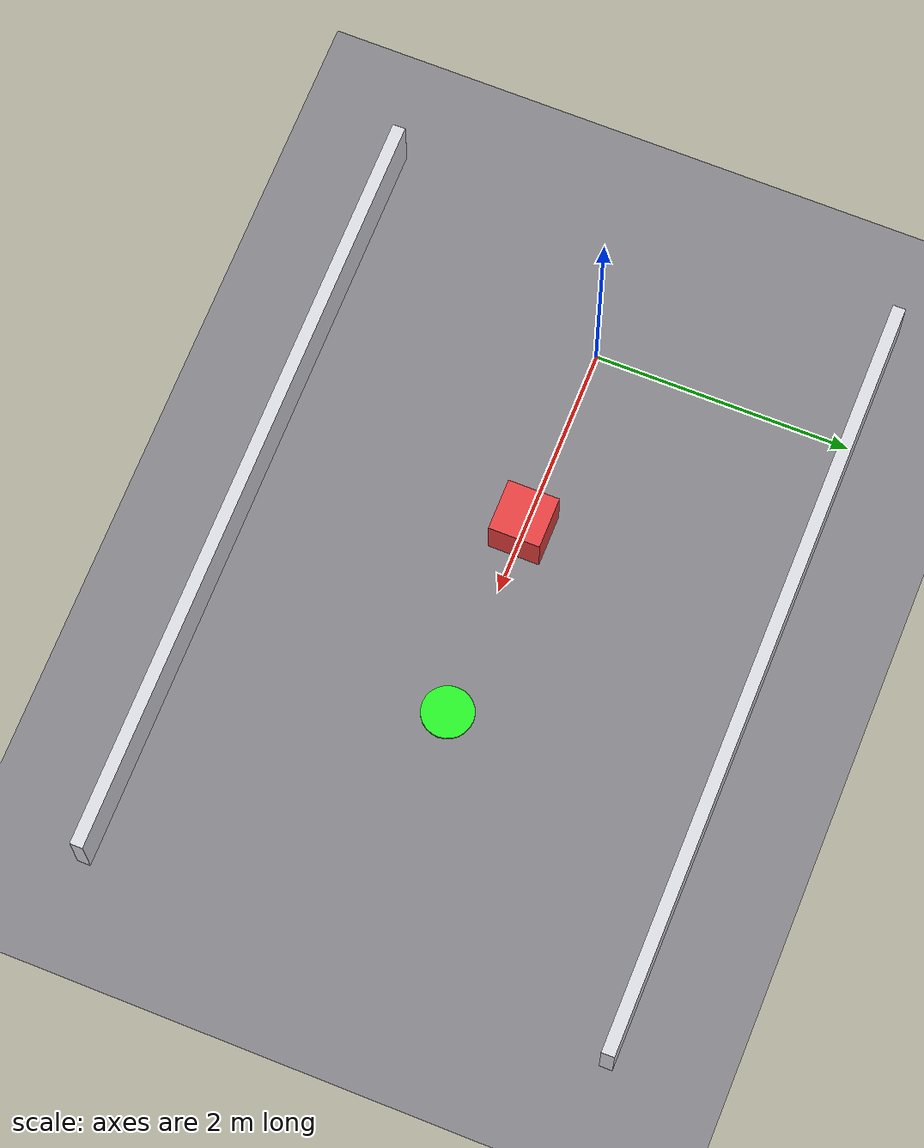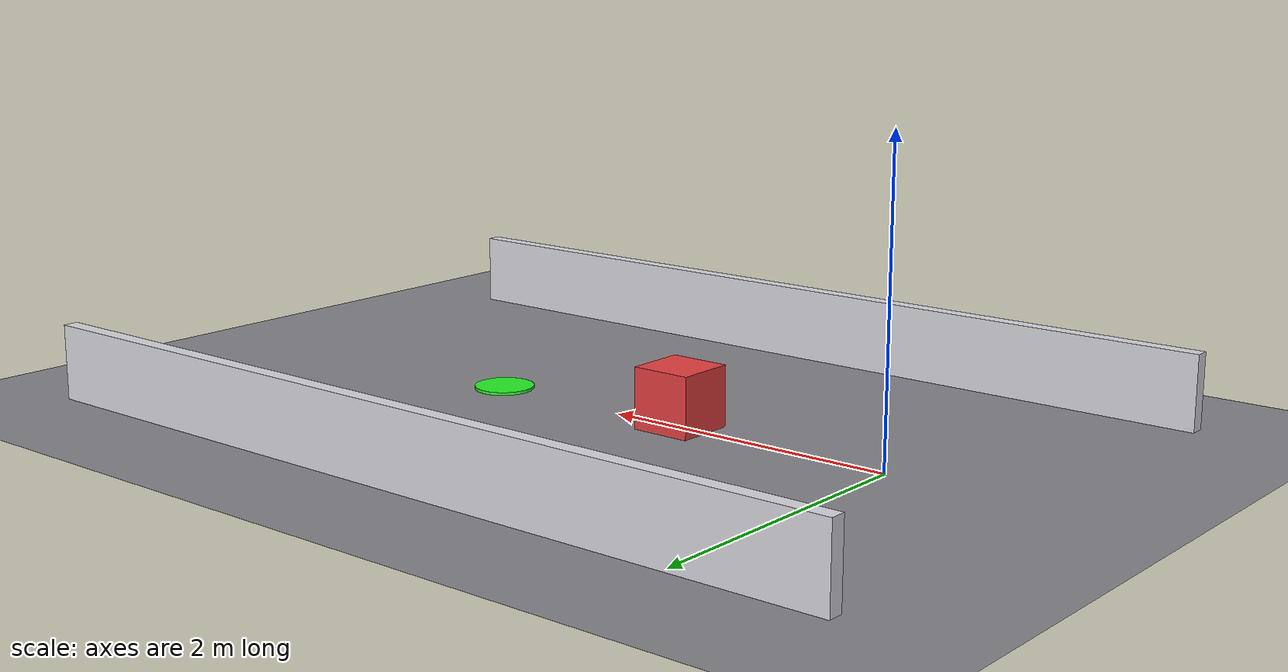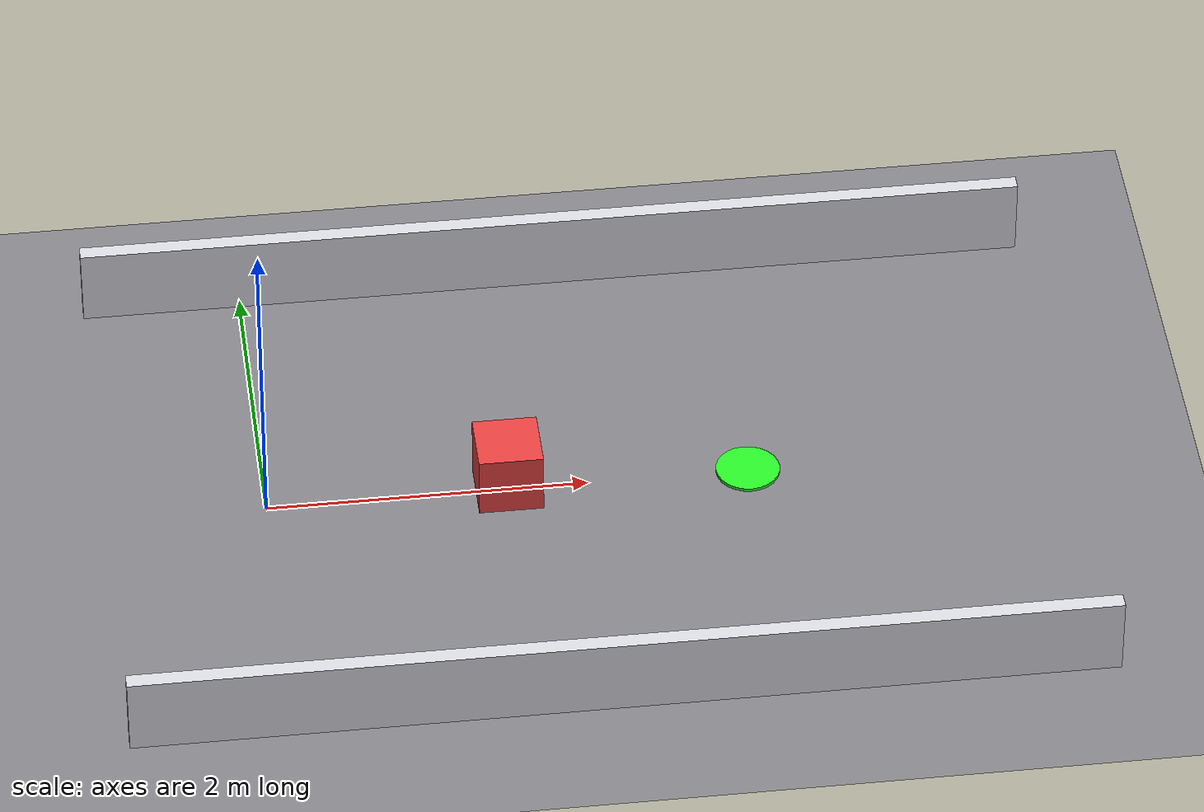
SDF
<?xml version="1.0"?>
<sdf version="1.10">
  <world name="ika_debug_world">

    <physics name="1ms" type="ignored">
      <max_step_size>0.002</max_step_size>
      <real_time_factor>1.0</real_time_factor>
    </physics>

    <plugin filename="gz-sim-physics-system" name="gz::sim::systems::Physics"/>
    <plugin filename="gz-sim-user-commands-system" name="gz::sim::systems::UserCommands"/>
    <plugin filename="gz-sim-scene-broadcaster-system" name="gz::sim::systems::SceneBroadcaster"/>
    <plugin filename="gz-sim-contact-system" name="gz::sim::systems::Contact"/>
    <plugin filename="gz-sim-imu-system" name="gz::sim::systems::Imu"/>
    <plugin filename="gz-sim-sensors-system" name="gz::sim::systems::Sensors">
      <render_engine>ogre2</render_engine>
    </plugin>
    <plugin filename="gz-sim-navsat-system" name="gz::sim::systems::NavSat"/>

    <gravity>0 0 -9.81</gravity>
    <magnetic_field>6e-06 2.3e-05 -4.2e-05</magnetic_field>

    <scene>
      <ambient>0.55 0.55 0.6 1</ambient>
      <background>0.65 0.78 0.92 1</background>
      <grid>false</grid>
    </scene>

    <light type="directional" name="sun">
      <cast_shadows>true</cast_shadows>
      <pose>0 0 10 0 0 0</pose>
      <diffuse>0.9 0.9 0.88 1</diffuse>
      <specular>0.2 0.2 0.2 1</specular>
      <direction>-0.4 0.2 -0.9</direction>
    </light>

    <spherical_coordinates>
      <surface_model>EARTH_WGS84</surface_model>
      <world_frame_orientation>ENU</world_frame_orientation>
      <latitude_deg>41.015137</latitude_deg>
      <longitude_deg>28.979530</longitude_deg>
      <elevation>40.0</elevation>
    </spherical_coordinates>

    <!-- =========================  ZEMIN  ========================= -->
    <model name="ground_plane">
      <static>true</static>
      <link name="link">
        <collision name="c">
          <geometry><plane><normal>0 0 1</normal><size>20 20</size></plane></geometry>
          <surface><friction><ode><mu>1.0</mu><mu2>1.0</mu2></ode></friction></surface>
        </collision>
        <visual name="v">
          <geometry><plane><normal>0 0 1</normal><size>20 20</size></plane></geometry>
          <material><ambient>0.42 0.42 0.44 1</ambient><diffuse>0.52 0.52 0.54 1</diffuse></material>
        </visual>
      </link>
    </model>

    <model name="boundary_wall_north">
      <static>true</static>
      <pose>2.0 2.0 0.25 0 0 0</pose>
      <link name="link">
        <collision name="c"><geometry><box><size>6.0 0.10 0.50</size></box></geometry></collision>
        <visual name="v"><geometry><box><size>6.0 0.10 0.50</size></box></geometry>
          <material><ambient>0.78 0.78 0.80 1</ambient><diffuse>0.85 0.85 0.88 1</diffuse></material>
        </visual>
      </link>
    </model>
    <model name="boundary_wall_south">
      <static>true</static>
      <pose>2.0 -2.0 0.25 0 0 0</pose>
      <link name="link">
        <collision name="c"><geometry><box><size>6.0 0.10 0.50</size></box></geometry></collision>
        <visual name="v"><geometry><box><size>6.0 0.10 0.50</size></box></geometry>
          <material><ambient>0.78 0.78 0.80 1</ambient><diffuse>0.85 0.85 0.88 1</diffuse></material>
        </visual>
      </link>
    </model>

    <model name="obs_1">
      <static>true</static>
      <pose>1.5 0 0.20 0 0 0</pose>
      <link name="link">
        <collision name="c"><geometry><box><size>0.40 0.40 0.40</size></box></geometry></collision>
        <visual name="v"><geometry><box><size>0.40 0.40 0.40</size></box></geometry>
          <material><ambient>0.80 0.20 0.20 1</ambient><diffuse>0.90 0.25 0.25 1</diffuse></material>
        </visual>
      </link>
    </model>

    <model name="goal_marker">
      <static>true</static>
      <pose>3.0 0 0.01 0 0 0</pose>
      <link name="link">
        <visual name="v">
          <geometry><cylinder><radius>0.20</radius><length>0.02</length></cylinder></geometry>
          <material><ambient>0.10 0.80 0.10 1</ambient><diffuse>0.15 0.95 0.15 1</diffuse></material>
        </visual>
      </link>
    </model>

  </world>
</sdf>
